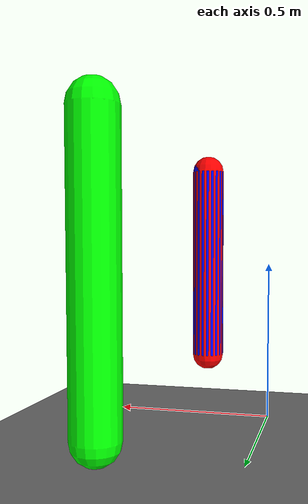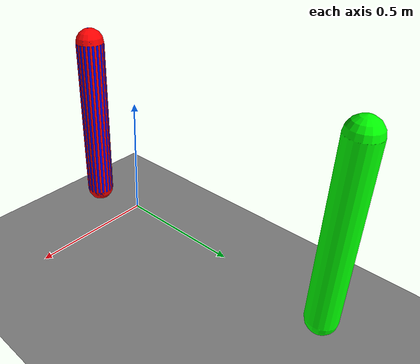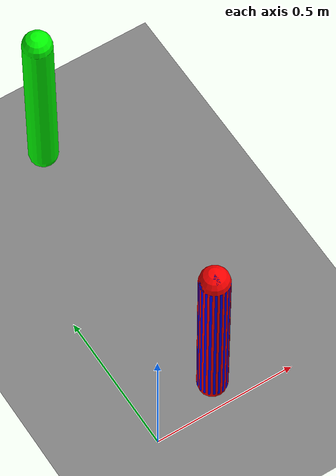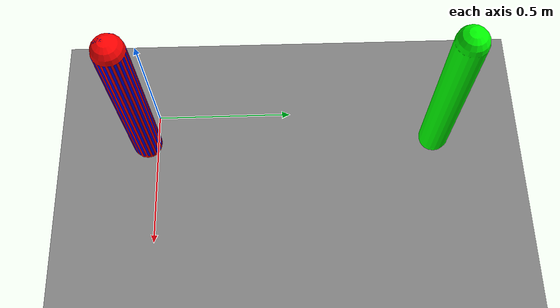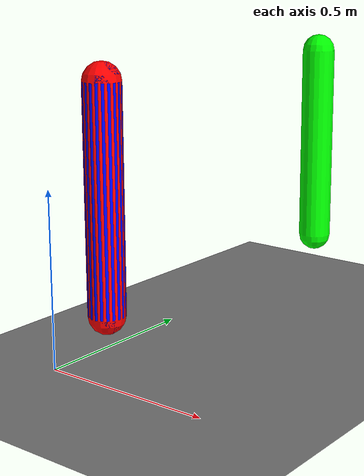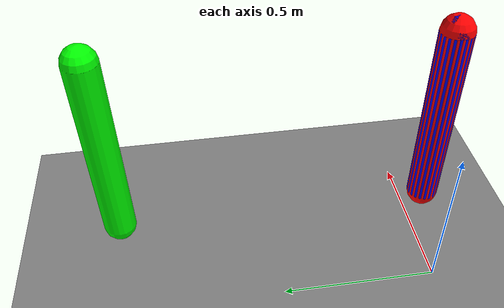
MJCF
<?xml version="1.0" ?>
<mujoco>
  <worldbody>
    <light pos="0 0 3"/>
    <geom name="floor" type="plane" size="3 3 0.1"/>
    <body name="original" pos="0.2 0 0.5">
      <freejoint/>
      <geom name="original_geom" type="capsule" size="0.05 0.3" rgba="1 0 0 1"/>
    </body>
    <body name="translated" pos="0.2 1 0.5">
      <freejoint/>
      <geom name="translated_geom" type="capsule" size="0.05 0.3" rgba="0 1 0 1"/>
    </body>
    <body name="rotated" pos="0.2 0 0.5" quat="0.923879532511 0 0 0.382683432365">
      <freejoint/>
      <geom name="rotated_geom" type="capsule" size="0.05 0.3" rgba="0 0 1 1"/>
    </body>
    <body name="reflected" pos="0.2 -0 0.5">
      <freejoint/>
      <geom name="reflected_geom" type="capsule" size="0.05 0.3" rgba="1 1 0 1"/>
    </body>
  </worldbody>
  <option gravity="0 0 -9.81"/>
</mujoco>
